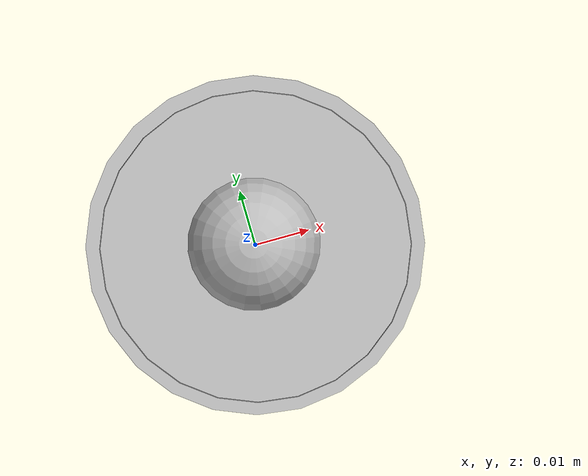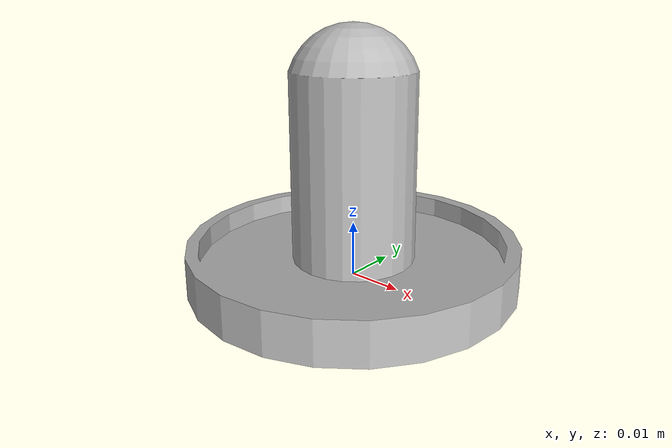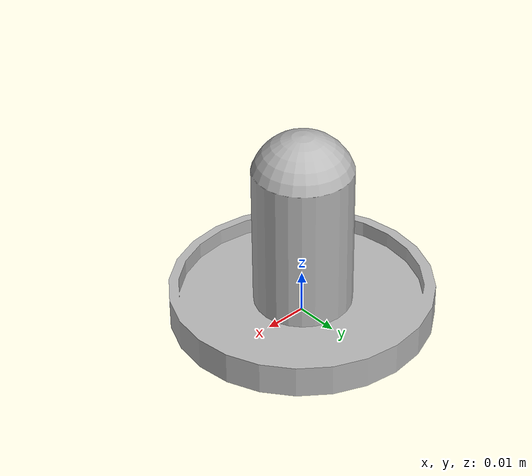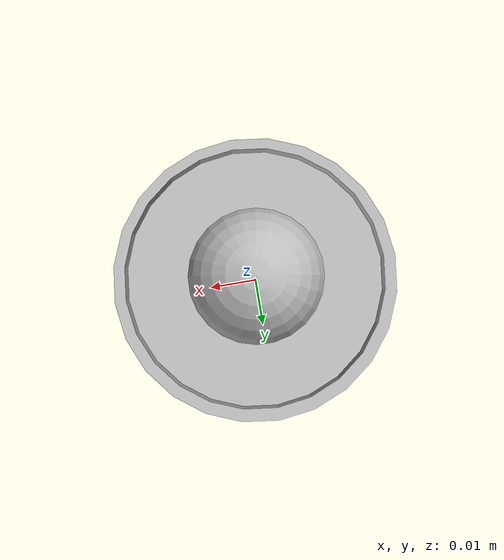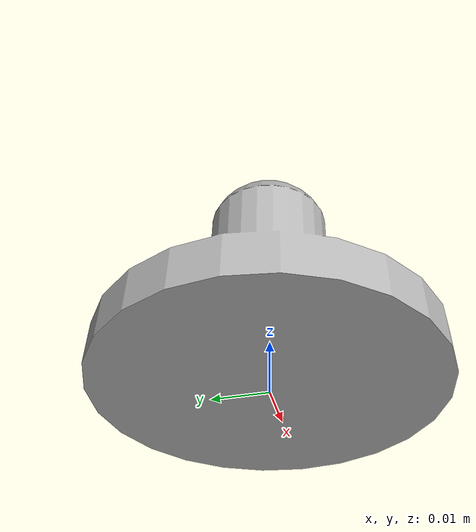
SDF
<sdf version="1.7">
  <model name="paddle">
    <link name="paddle_body_link">
      <pose>0 0 0 0 0 0</pose>

      <inertial>
        <mass>0.05</mass>
        <inertia>
          <ixx>0.002</ixx>
          <iyy>0.002</iyy>
          <izz>0.01</izz>
        </inertia>
      </inertial>

      <collision name="paddle_collision">
        <geometry>
          <box>
            <size>0.04 0.01 0.08</size>
          </box>
        </geometry>
      </collision>

      <visual name="visual">
        <geometry>
          <mesh>
            <uri>paddle.obj</uri>
            <scale>0.01 0.01 0.01</scale>
          </mesh>
        </geometry>
      </visual>

    </link>
  </model>
</sdf>
